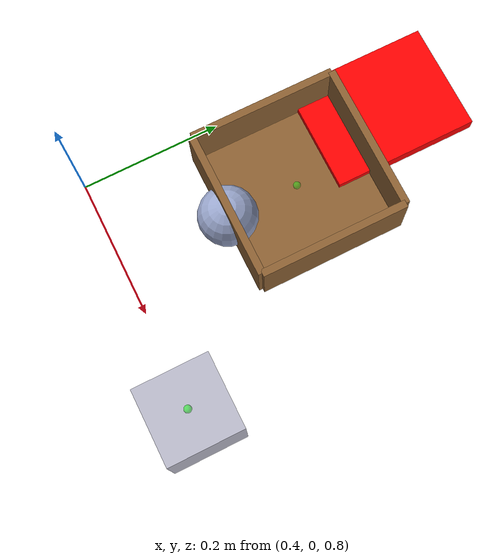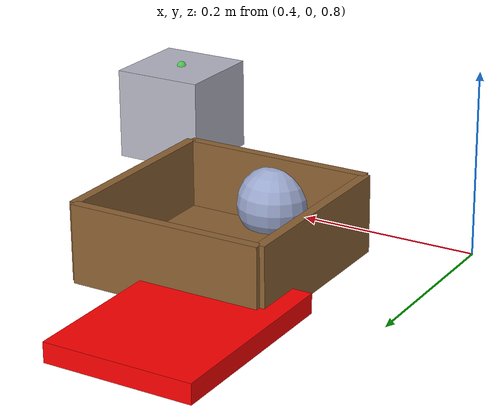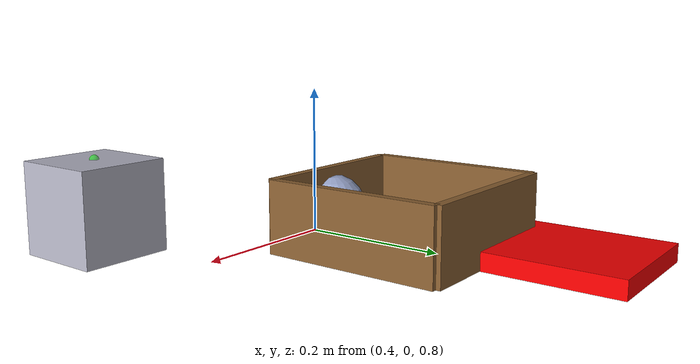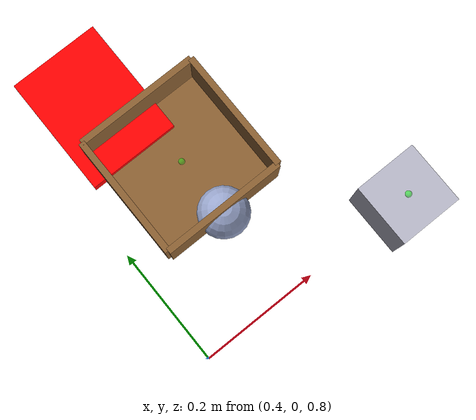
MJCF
<mujoco>

  <asset>
    <material name="metal_box_mat" rgba="0.72 0.72 0.78 1" specular="0.6" shininess="0.4" />
    <material name="metal_sphere_mat" rgba="0.60 0.65 0.80 1" specular="0.7" shininess="0.5" />
    <material name="target_zone_mat" rgba="1.0 0.0 0.0 1" specular="0.05" shininess="0.1" />
  </asset>

  <worldbody>

    <body name="metal_box" pos="0.76 0 0.90">
      <freejoint name="box_freejoint" />

      <geom name="box_geom" type="box" size="0.05 0.05 0.05" mass="0.5" material="metal_box_mat" friction="0.8 0.005 0.0001" condim="6" contype="4" conaffinity="6" />

      <site name="box_top_site" pos="0 0 0.05" size="0.005" rgba="0 1 0 0.5" />
    </body>

    <body name="metal_sphere" pos="0.55 0.15 0.88">
      <freejoint name="sphere_freejoint" />

      <geom name="sphere_geom" type="sphere" size="0.04" mass="0.3" material="metal_sphere_mat" friction="0.8 0.005 0.0001" condim="6" contype="4" conaffinity="6" />

      <site name="sphere_top_site" pos="0 0 0.04" size="0.005" rgba="0 0.8 1 0.5" />
    </body>

    <body name="target_zone" pos="0.5 0.4 0.86">
      <geom name="target_geom" type="box" size="0.075 0.1 0.01" material="target_zone_mat" condim="3" contype="2" conaffinity="3" />

      <site name="target_touch_site" type="box" pos="0 0 0.01" size="0.075 0.1 0.002" rgba="1 1 0 0" />
    </body>

  <body name="bin" pos="0.55 0.25 0.85">
  <geom name="bin_floor" type="box" size="0.10 0.10 0.005" pos="0 0 0.005" rgba="0.55 0.38 0.20 1" contype="2" conaffinity="3" />
  <geom name="bin_wall_px" type="box" size="0.005 0.10 0.04" pos="0.10 0 0.04" rgba="0.55 0.38 0.20 1" contype="2" conaffinity="3" />
  <geom name="bin_wall_nx" type="box" size="0.005 0.10 0.04" pos="-0.10 0 0.04" rgba="0.55 0.38 0.20 1" contype="2" conaffinity="3" />
  <geom name="bin_wall_py" type="box" size="0.10 0.005 0.04" pos="0 0.10 0.04" rgba="0.55 0.38 0.20 1" contype="2" conaffinity="3" />
  <geom name="bin_wall_ny" type="box" size="0.10 0.005 0.04" pos="0 -0.10 0.04" rgba="0.55 0.38 0.20 1" contype="2" conaffinity="3" />
  <site name="bin_center" pos="0 0 0.02" size="0.005" rgba="0 1 0 0.4" />
</body></worldbody>

  <sensor>
    <touch name="target_touch_sensor" site="target_touch_site" />
  </sensor>

</mujoco>
